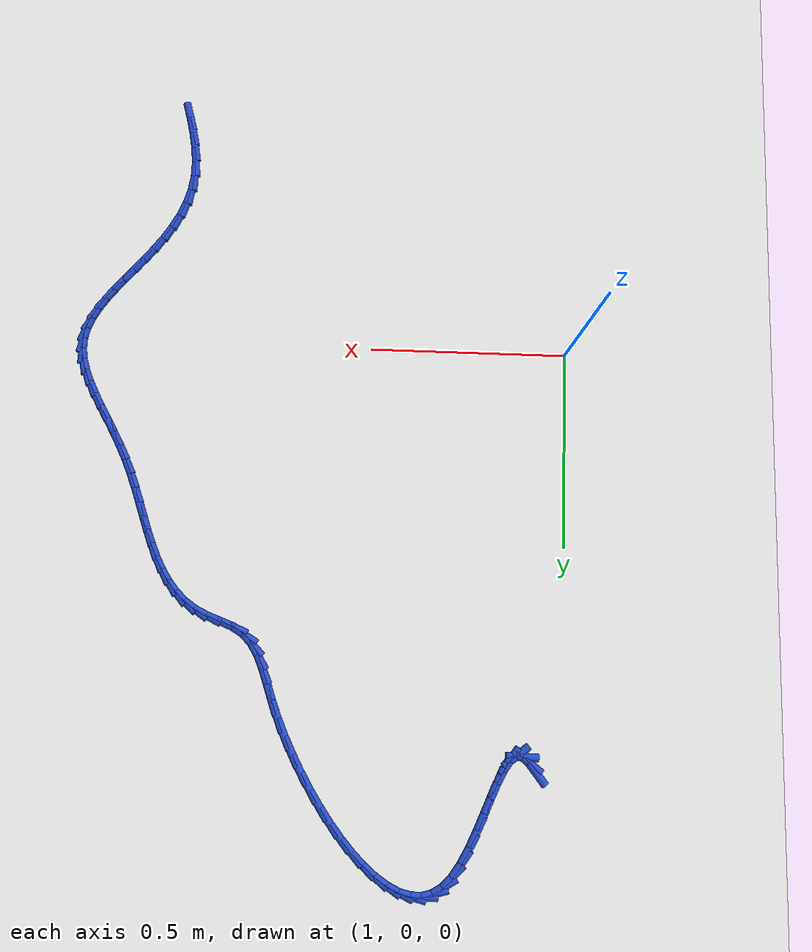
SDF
<sdf version="1.6">
 <world name="default">
  <model name="ground_plane">
   <static>1</static>
   <link name="link">
    <collision name="collision">
     <geometry><plane><normal>0 0 1</normal><size>100 100</size></plane></geometry>
     <surface><friction><ode><mu>100</mu><mu2>50</mu2></ode></friction></surface>
    </collision>
    <visual name="visual">
     <cast_shadows>0</cast_shadows>
     <geometry><plane><normal>0 0 1</normal><size>100 100</size></plane></geometry>
     <material>
      <script><uri>file://media/materials/scripts/gazebo.material</uri><name>Gazebo/WhiteGlow</name></script>
     </material>
    </visual>
   </link>
  </model>
  <model name="line">
   <link name="link_59">
    <pose>1.0690359240949716 1.0495042006117834 0.01 0 1.57 -0.9143076333291085</pose>
    <collision name="collision">
     <geometry><cylinder><radius>0.01</radius><length>0.08</length></cylinder></geometry>
    </collision>
    <visual name="visual">
     <material>
      <script><name>Gazebo/Blue</name><uri>file://media/materials/scripts/gazebo.material</uri></script>
     </material>
     <geometry><cylinder><radius>0.01</radius><length>0.08</length></cylinder></geometry>
    </visual>
   </link>
   <link name="link_60">
    <pose>1.0858885148181117 1.0276317481392983 0.01 0 1.57 -0.6633861019622189</pose>
    <collision name="collision">
     <geometry><cylinder><radius>0.01</radius><length>0.08</length></cylinder></geometry>
    </collision>
    <visual name="visual">
     <material>
      <script><name>Gazebo/Blue</name><uri>file://media/materials/scripts/gazebo.material</uri></script>
     </material>
     <geometry><cylinder><radius>0.01</radius><length>0.08</length></cylinder></geometry>
    </visual>
   </link>
   <link name="link_61">
    <pose>1.1016445791863296 1.0153176761917921 0.01 0 1.57 -0.019727249602444423</pose>
    <collision name="collision">
     <geometry><cylinder><radius>0.01</radius><length>0.08</length></cylinder></geometry>
    </collision>
    <visual name="visual">
     <material>
      <script><name>Gazebo/Blue</name><uri>file://media/materials/scripts/gazebo.material</uri></script>
     </material>
     <geometry><cylinder><radius>0.01</radius><length>0.08</length></cylinder></geometry>
    </visual>
   </link>
   <link name="link_62">
    <pose>1.1167711962874505 1.0150192309248378 0.01 0 1.57 0.6793722511070948</pose>
    <collision name="collision">
     <geometry><cylinder><radius>0.01</radius><length>0.08</length></cylinder></geometry>
    </collision>
    <visual name="visual">
     <material>
      <script><name>Gazebo/Blue</name><uri>file://media/materials/scripts/gazebo.material</uri></script>
     </material>
     <geometry><cylinder><radius>0.01</radius><length>0.08</length></cylinder></geometry>
    </visual>
   </link>
   <link name="link_63">
    <pose>1.1316212679445539 1.0270124999554586 0.01 0 1.57 0.9823801958233633</pose>
    <collision name="collision">
     <geometry><cylinder><radius>0.01</radius><length>0.08</length></cylinder></geometry>
    </collision>
    <visual name="visual">
     <material>
      <script><name>Gazebo/Blue</name><uri>file://media/materials/scripts/gazebo.material</uri></script>
     </material>
     <geometry><cylinder><radius>0.01</radius><length>0.08</length></cylinder></geometry>
    </visual>
   </link>
   <link name="link_64">
    <pose>1.1464232128322451 1.0491955363348886 0.01 0 1.57 1.109789082871601</pose>
    <collision name="collision">
     <geometry><cylinder><radius>0.01</radius><length>0.08</length></cylinder></geometry>
    </collision>
    <visual name="visual">
     <material>
      <script><name>Gazebo/Blue</name><uri>file://media/materials/scripts/gazebo.material</uri></script>
     </material>
     <geometry><cylinder><radius>0.01</radius><length>0.08</length></cylinder></geometry>
    </visual>
   </link>
   <link name="link_65">
    <pose>1.1613991570643696 1.079346184658976 0.01 0 1.57 1.1661864163518278</pose>
    <collision name="collision">
     <geometry><cylinder><radius>0.01</radius><length>0.08</length></cylinder></geometry>
    </collision>
    <visual name="visual">
     <material>
      <script><name>Gazebo/Blue</name><uri>file://media/materials/scripts/gazebo.material</uri></script>
     </material>
     <geometry><cylinder><radius>0.01</radius><length>0.08</length></cylinder></geometry>
    </visual>
   </link>
   <link name="link_66">
    <pose>1.1767712267547705 1.1152422895235679 0.01 0 1.57 1.1854322717362504</pose>
    <collision name="collision">
     <geometry><cylinder><radius>0.01</radius><length>0.08</length></cylinder></geometry>
    </collision>
    <visual name="visual">
     <material>
      <script><name>Gazebo/Blue</name><uri>file://media/materials/scripts/gazebo.material</uri></script>
     </material>
     <geometry><cylinder><radius>0.01</radius><length>0.08</length></cylinder></geometry>
    </visual>
   </link>
   <link name="link_67">
    <pose>1.1927615480172937 1.1546616955245113 0.01 0 1.57 1.178858500598776</pose>
    <collision name="collision">
     <geometry><cylinder><radius>0.01</radius><length>0.08</length></cylinder></geometry>
    </collision>
    <visual name="visual">
     <material>
      <script><name>Gazebo/Blue</name><uri>file://media/materials/scripts/gazebo.material</uri></script>
     </material>
     <geometry><cylinder><radius>0.01</radius><length>0.08</length></cylinder></geometry>
    </visual>
   </link>
   <link name="link_68">
    <pose>1.2095922469657818 1.195382247257653 0.01 0 1.57 1.1482891230084307</pose>
    <collision name="collision">
     <geometry><cylinder><radius>0.01</radius><length>0.08</length></cylinder></geometry>
    </collision>
    <visual name="visual">
     <material>
      <script><name>Gazebo/Blue</name><uri>file://media/materials/scripts/gazebo.material</uri></script>
     </material>
     <geometry><cylinder><radius>0.01</radius><length>0.08</length></cylinder></geometry>
    </visual>
   </link>
   <link name="link_69">
    <pose>1.2274854497140804 1.2351817893188413 0.01 0 1.57 1.0887782301507647</pose>
    <collision name="collision">
     <geometry><cylinder><radius>0.01</radius><length>0.08</length></cylinder></geometry>
    </collision>
    <visual name="visual">
     <material>
      <script><name>Gazebo/Blue</name><uri>file://media/materials/scripts/gazebo.material</uri></script>
     </material>
     <geometry><cylinder><radius>0.01</radius><length>0.08</length></cylinder></geometry>
    </visual>
   </link>
   <link name="link_70">
    <pose>1.246663282376033 1.2718381663039233 0.01 0 1.57 0.9867003713170029</pose>
    <collision name="collision">
     <geometry><cylinder><radius>0.01</radius><length>0.08</length></cylinder></geometry>
    </collision>
    <visual name="visual">
     <material>
      <script><name>Gazebo/Blue</name><uri>file://media/materials/scripts/gazebo.material</uri></script>
     </material>
     <geometry><cylinder><radius>0.01</radius><length>0.08</length></cylinder></geometry>
    </visual>
   </link>
   <link name="link_71">
    <pose>1.267347871065484 1.3031292228087452 0.01 0 1.57 0.8139678353129836</pose>
    <collision name="collision">
     <geometry><cylinder><radius>0.01</radius><length>0.08</length></cylinder></geometry>
    </collision>
    <visual name="visual">
     <material>
      <script><name>Gazebo/Blue</name><uri>file://media/materials/scripts/gazebo.material</uri></script>
     </material>
     <geometry><cylinder><radius>0.01</radius><length>0.08</length></cylinder></geometry>
    </visual>
   </link>
   <link name="link_72">
    <pose>1.289757133724412 1.3268569632544098 0.01 0 1.57 0.5584176943114734</pose>
    <collision name="collision">
     <geometry><cylinder><radius>0.01</radius><length>0.08</length></cylinder></geometry>
    </collision>
    <visual name="visual">
     <material>
      <script><name>Gazebo/Blue</name><uri>file://media/materials/scripts/gazebo.material</uri></script>
     </material>
     <geometry><cylinder><radius>0.01</radius><length>0.08</length></cylinder></geometry>
    </visual>
   </link>
   <link name="link_73">
    <pose>1.313913049412466 1.3419483102707752 0.01 0 1.57 0.2649962362428295</pose>
    <collision name="collision">
     <geometry><cylinder><radius>0.01</radius><length>0.08</length></cylinder></geometry>
    </collision>
    <visual name="visual">
     <material>
      <script><name>Gazebo/Blue</name><uri>file://media/materials/scripts/gazebo.material</uri></script>
     </material>
     <geometry><cylinder><radius>0.01</radius><length>0.08</length></cylinder></geometry>
    </visual>
   </link>
   <link name="link_74">
    <pose>1.3395625907868478 1.3489090446804244 0.01 0 1.57 -0.020312635874405845</pose>
    <collision name="collision">
     <geometry><cylinder><radius>0.01</radius><length>0.08</length></cylinder></geometry>
    </collision>
    <visual name="visual">
     <material>
      <script><name>Gazebo/Blue</name><uri>file://media/materials/scripts/gazebo.material</uri></script>
     </material>
     <geometry><cylinder><radius>0.01</radius><length>0.08</length></cylinder></geometry>
    </visual>
   </link>
   <link name="link_75">
    <pose>1.3664321369649444 1.3483631782953316 0.01 0 1.57 -0.2609673298879056</pose>
    <collision name="collision">
     <geometry><cylinder><radius>0.01</radius><length>0.08</length></cylinder></geometry>
    </collision>
    <visual name="visual">
     <material>
      <script><name>Gazebo/Blue</name><uri>file://media/materials/scripts/gazebo.material</uri></script>
     </material>
     <geometry><cylinder><radius>0.01</radius><length>0.08</length></cylinder></geometry>
    </visual>
   </link>
   <link name="link_76">
    <pose>1.394248067064145 1.3409347229274697 0.01 0 1.57 -0.44787537664733945</pose>
    <collision name="collision">
     <geometry><cylinder><radius>0.01</radius><length>0.08</length></cylinder></geometry>
    </collision>
    <visual name="visual">
     <material>
      <script><name>Gazebo/Blue</name><uri>file://media/materials/scripts/gazebo.material</uri></script>
     </material>
     <geometry><cylinder><radius>0.01</radius><length>0.08</length></cylinder></geometry>
    </visual>
   </link>
   <link name="link_77">
    <pose>1.4227367602018375 1.3272476903888137 0.01 0 1.57 -0.5895118840501687</pose>
    <collision name="collision">
     <geometry><cylinder><radius>0.01</radius><length>0.08</length></cylinder></geometry>
    </collision>
    <visual name="visual">
     <material>
      <script><name>Gazebo/Blue</name><uri>file://media/materials/scripts/gazebo.material</uri></script>
     </material>
     <geometry><cylinder><radius>0.01</radius><length>0.08</length></cylinder></geometry>
    </visual>
   </link>
   <link name="link_78">
    <pose>1.4516245954954103 1.307926092491336 0.01 0 1.57 -0.6978698106410746</pose>
    <collision name="collision">
     <geometry><cylinder><radius>0.01</radius><length>0.08</length></cylinder></geometry>
    </collision>
    <visual name="visual">
     <material>
      <script><name>Gazebo/Blue</name><uri>file://media/materials/scripts/gazebo.material</uri></script>
     </material>
     <geometry><cylinder><radius>0.01</radius><length>0.08</length></cylinder></geometry>
    </visual>
   </link>
   <link name="link_79">
    <pose>1.4806379520622517 1.2835939410470119 0.01 0 1.57 -0.7828529496448711</pose>
    <collision name="collision">
     <geometry><cylinder><radius>0.01</radius><length>0.08</length></cylinder></geometry>
    </collision>
    <visual name="visual">
     <material>
      <script><name>Gazebo/Blue</name><uri>file://media/materials/scripts/gazebo.material</uri></script>
     </material>
     <geometry><cylinder><radius>0.01</radius><length>0.08</length></cylinder></geometry>
    </visual>
   </link>
   <link name="link_80">
    <pose>1.5095032090197504 1.2548752478678145 0.01 0 1.57 -0.8515747197594691</pose>
    <collision name="collision">
     <geometry><cylinder><radius>0.01</radius><length>0.08</length></cylinder></geometry>
    </collision>
    <visual name="visual">
     <material>
      <script><name>Gazebo/Blue</name><uri>file://media/materials/scripts/gazebo.material</uri></script>
     </material>
     <geometry><cylinder><radius>0.01</radius><length>0.08</length></cylinder></geometry>
    </visual>
   </link>
   <link name="link_81">
    <pose>1.537946745485295 1.2223940247657177 0.01 0 1.57 -0.9089847902359813</pose>
    <collision name="collision">
     <geometry><cylinder><radius>0.01</radius><length>0.08</length></cylinder></geometry>
    </collision>
    <visual name="visual">
     <material>
      <script><name>Gazebo/Blue</name><uri>file://media/materials/scripts/gazebo.material</uri></script>
     </material>
     <geometry><cylinder><radius>0.01</radius><length>0.08</length></cylinder></geometry>
    </visual>
   </link>
   <link name="link_82">
    <pose>1.565694940576273 1.1867742835526953 0.01 0 1.57 -0.9585714182159167</pose>
    <collision name="collision">
     <geometry><cylinder><radius>0.01</radius><length>0.08</length></cylinder></geometry>
    </collision>
    <visual name="visual">
     <material>
      <script><name>Gazebo/Blue</name><uri>file://media/materials/scripts/gazebo.material</uri></script>
     </material>
     <geometry><cylinder><radius>0.01</radius><length>0.08</length></cylinder></geometry>
    </visual>
   </link>
   <link name="link_83">
    <pose>1.592474173410073 1.1486400360407212 0.01 0 1.57 -1.0028879195318579</pose>
    <collision name="collision">
     <geometry><cylinder><radius>0.01</radius><length>0.08</length></cylinder></geometry>
    </collision>
    <visual name="visual">
     <material>
      <script><name>Gazebo/Blue</name><uri>file://media/materials/scripts/gazebo.material</uri></script>
     </material>
     <geometry><cylinder><radius>0.01</radius><length>0.08</length></cylinder></geometry>
    </visual>
   </link>
   <link name="link_84">
    <pose>1.6180108231040837 1.1086152940417695 0.01 0 1.57 -1.0439171452170466</pose>
    <collision name="collision">
     <geometry><cylinder><radius>0.01</radius><length>0.08</length></cylinder></geometry>
    </collision>
    <visual name="visual">
     <material>
      <script><name>Gazebo/Blue</name><uri>file://media/materials/scripts/gazebo.material</uri></script>
     </material>
     <geometry><cylinder><radius>0.01</radius><length>0.08</length></cylinder></geometry>
    </visual>
   </link>
   <link name="link_85">
    <pose>1.6420312687756935 1.0673240693678128 0.01 0 1.57 -1.083330476829007</pose>
    <collision name="collision">
     <geometry><cylinder><radius>0.01</radius><length>0.08</length></cylinder></geometry>
    </collision>
    <visual name="visual">
     <material>
      <script><name>Gazebo/Blue</name><uri>file://media/materials/scripts/gazebo.material</uri></script>
     </material>
     <geometry><cylinder><radius>0.01</radius><length>0.08</length></cylinder></geometry>
    </visual>
   </link>
   <link name="link_86">
    <pose>1.6642618895422907 1.025390373830827 0.01 0 1.57 -1.1226925946533826</pose>
    <collision name="collision">
     <geometry><cylinder><radius>0.01</radius><length>0.08</length></cylinder></geometry>
    </collision>
    <visual name="visual">
     <material>
      <script><name>Gazebo/Blue</name><uri>file://media/materials/scripts/gazebo.material</uri></script>
     </material>
     <geometry><cylinder><radius>0.01</radius><length>0.08</length></cylinder></geometry>
    </visual>
   </link>
   <link name="link_87">
    <pose>1.6844290645212632 0.9834382192427844 0.01 0 1.57 -1.163656321785837</pose>
    <collision name="collision">
     <geometry><cylinder><radius>0.01</radius><length>0.08</length></cylinder></geometry>
    </collision>
    <visual name="visual">
     <material>
      <script><name>Gazebo/Blue</name><uri>file://media/materials/scripts/gazebo.material</uri></script>
     </material>
     <geometry><cylinder><radius>0.01</radius><length>0.08</length></cylinder></geometry>
    </visual>
   </link>
   <link name="link_88">
    <pose>1.7022591728299994 0.9420916174156594 0.01 0 1.57 -1.2080551800653327</pose>
    <collision name="collision">
     <geometry><cylinder><radius>0.01</radius><length>0.08</length></cylinder></geometry>
    </collision>
    <visual name="visual">
     <material>
      <script><name>Gazebo/Blue</name><uri>file://media/materials/scripts/gazebo.material</uri></script>
     </material>
     <geometry><cylinder><radius>0.01</radius><length>0.08</length></cylinder></geometry>
    </visual>
   </link>
   <link name="link_89">
    <pose>1.7174848307916881 0.9019750700030283 0.01 0 1.57 -1.2425263969371279</pose>
    <collision name="collision">
     <geometry><cylinder><radius>0.01</radius><length>0.08</length></cylinder></geometry>
    </collision>
    <visual name="visual">
     <material>
      <script><name>Gazebo/Blue</name><uri>file://media/materials/scripts/gazebo.material</uri></script>
     </material>
     <geometry><cylinder><radius>0.01</radius><length>0.08</length></cylinder></geometry>
    </visual>
   </link>
   <link name="link_90">
    <pose>1.7304989342250021 0.8637649339887465 0.01 0 1.57 -1.2342651035443468</pose>
    <collision name="collision">
     <geometry><cylinder><radius>0.01</radius><length>0.08</length></cylinder></geometry>
    </collision>
    <visual name="visual">
     <material>
      <script><name>Gazebo/Blue</name><uri>file://media/materials/scripts/gazebo.material</uri></script>
     </material>
     <geometry><cylinder><radius>0.01</radius><length>0.08</length></cylinder></geometry>
    </visual>
   </link>
   <link name="link_91">
    <pose>1.7429288536563616 0.8282345163515193 0.01 0 1.57 -1.1694513382597655</pose>
    <collision name="collision">
     <geometry><cylinder><radius>0.01</radius><length>0.08</length></cylinder></geometry>
    </collision>
    <visual name="visual">
     <material>
      <script><name>Gazebo/Blue</name><uri>file://media/materials/scripts/gazebo.material</uri></script>
     </material>
     <geometry><cylinder><radius>0.01</radius><length>0.08</length></cylinder></geometry>
    </visual>
   </link>
   <link name="link_92">
    <pose>1.756537330639518 0.7961677554911107 0.01 0 1.57 -1.034131165396162</pose>
    <collision name="collision">
     <geometry><cylinder><radius>0.01</radius><length>0.08</length></cylinder></geometry>
    </collision>
    <visual name="visual">
     <material>
      <script><name>Gazebo/Blue</name><uri>file://media/materials/scripts/gazebo.material</uri></script>
     </material>
     <geometry><cylinder><radius>0.01</radius><length>0.08</length></cylinder></geometry>
    </visual>
   </link>
   <link name="link_93">
    <pose>1.7730871067282234 0.7683485898072846 0.01 0 1.57 -0.8202107259165238</pose>
    <collision name="collision">
     <geometry><cylinder><radius>0.01</radius><length>0.08</length></cylinder></geometry>
    </collision>
    <visual name="visual">
     <material>
      <script><name>Gazebo/Blue</name><uri>file://media/materials/scripts/gazebo.material</uri></script>
     </material>
     <geometry><cylinder><radius>0.01</radius><length>0.08</length></cylinder></geometry>
    </visual>
   </link>
   <link name="link_94">
    <pose>1.7943409234762275 0.7455609576998048 0.01 0 1.57 -0.5563300039576063</pose>
    <collision name="collision">
     <geometry><cylinder><radius>0.01</radius><length>0.08</length></cylinder></geometry>
    </collision>
    <visual name="visual">
     <material>
      <script><name>Gazebo/Blue</name><uri>file://media/materials/scripts/gazebo.material</uri></script>
     </material>
     <geometry><cylinder><radius>0.01</radius><length>0.08</length></cylinder></geometry>
    </visual>
   </link>
   <link name="link_95">
    <pose>1.8218674859854678 0.7284436005056392 0.01 0 1.57 -0.3834772855251435</pose>
    <collision name="collision">
     <geometry><cylinder><radius>0.01</radius><length>0.08</length></cylinder></geometry>
    </collision>
    <visual name="visual">
     <material>
      <script><name>Gazebo/Blue</name><uri>file://media/materials/scripts/gazebo.material</uri></script>
     </material>
     <geometry><cylinder><radius>0.01</radius><length>0.08</length></cylinder></geometry>
    </visual>
   </link>
   <link name="link_96">
    <pose>1.8542305918253645 0.7153866936680013 0.01 0 1.57 -0.35490584790483654</pose>
    <collision name="collision">
     <geometry><cylinder><radius>0.01</radius><length>0.08</length></cylinder></geometry>
    </collision>
    <visual name="visual">
     <material>
      <script><name>Gazebo/Blue</name><uri>file://media/materials/scripts/gazebo.material</uri></script>
     </material>
     <geometry><cylinder><radius>0.01</radius><length>0.08</length></cylinder></geometry>
    </visual>
   </link>
   <link name="link_97">
    <pose>1.8876277930763177 0.7030097561805205 0.01 0 1.57 -0.4535734919568333</pose>
    <collision name="collision">
     <geometry><cylinder><radius>0.01</radius><length>0.08</length></cylinder></geometry>
    </collision>
    <visual name="visual">
     <material>
      <script><name>Gazebo/Blue</name><uri>file://media/materials/scripts/gazebo.material</uri></script>
     </material>
     <geometry><cylinder><radius>0.01</radius><length>0.08</length></cylinder></geometry>
    </visual>
   </link>
   <link name="link_98">
    <pose>1.9183586725112893 0.6880293730322006 0.01 0 1.57 -0.6125329917405486</pose>
    <collision name="collision">
     <geometry><cylinder><radius>0.01</radius><length>0.08</length></cylinder></geometry>
    </collision>
    <visual name="visual">
     <material>
      <script><name>Gazebo/Blue</name><uri>file://media/materials/scripts/gazebo.material</uri></script>
     </material>
     <geometry><cylinder><radius>0.01</radius><length>0.08</length></cylinder></geometry>
    </visual>
   </link>
   <link name="link_99">
    <pose>1.945100499712917 0.6692380011333202 0.01 0 1.57 -0.7645291500459456</pose>
    <collision name="collision">
     <geometry><cylinder><radius>0.01</radius><length>0.08</length></cylinder></geometry>
    </collision>
    <visual name="visual">
     <material>
      <script><name>Gazebo/Blue</name><uri>file://media/materials/scripts/gazebo.material</uri></script>
     </material>
     <geometry><cylinder><radius>0.01</radius><length>0.08</length></cylinder></geometry>
    </visual>
   </link>
   <link name="link_100">
    <pose>1.968307749177456 0.6469797104003443 0.01 0 1.57 -0.8985905577520304</pose>
    <collision name="collision">
     <geometry><cylinder><radius>0.01</radius><length>0.08</length></cylinder></geometry>
    </collision>
    <visual name="visual">
     <material>
      <script><name>Gazebo/Blue</name><uri>file://media/materials/scripts/gazebo.material</uri></script>
     </material>
     <geometry><cylinder><radius>0.01</radius><length>0.08</length></cylinder></geometry>
    </visual>
   </link>
   <link name="link_101">
    <pose>1.9884776443339915 0.6216358932890104 0.01 0 1.57 -1.0096425331352197</pose>
    <collision name="collision">
     <geometry><cylinder><radius>0.01</radius><length>0.08</length></cylinder></geometry>
    </collision>
    <visual name="visual">
     <material>
      <script><name>Gazebo/Blue</name><uri>file://media/materials/scripts/gazebo.material</uri></script>
     </material>
     <geometry><cylinder><radius>0.01</radius><length>0.08</length></cylinder></geometry>
    </visual>
   </link>
   <link name="link_102">
    <pose>2.006107408611611 0.5935879422550546 0.01 0 1.57 -1.0966284763951721</pose>
    <collision name="collision">
     <geometry><cylinder><radius>0.01</radius><length>0.08</length></cylinder></geometry>
    </collision>
    <visual name="visual">
     <material>
      <script><name>Gazebo/Blue</name><uri>file://media/materials/scripts/gazebo.material</uri></script>
     </material>
     <geometry><cylinder><radius>0.01</radius><length>0.08</length></cylinder></geometry>
    </visual>
   </link>
   <link name="link_103">
    <pose>2.0216942654393995 0.563217249754214 0.01 0 1.57 -1.1608652773094261</pose>
    <collision name="collision">
     <geometry><cylinder><radius>0.01</radius><length>0.08</length></cylinder></geometry>
    </collision>
    <visual name="visual">
     <material>
      <script><name>Gazebo/Blue</name><uri>file://media/materials/scripts/gazebo.material</uri></script>
     </material>
     <geometry><cylinder><radius>0.01</radius><length>0.08</length></cylinder></geometry>
    </visual>
   </link>
   <link name="link_104">
    <pose>2.035735438246444 0.5309052082422248 0.01 0 1.57 -1.2045224174410007</pose>
    <collision name="collision">
     <geometry><cylinder><radius>0.01</radius><length>0.08</length></cylinder></geometry>
    </collision>
    <visual name="visual">
     <material>
      <script><name>Gazebo/Blue</name><uri>file://media/materials/scripts/gazebo.material</uri></script>
     </material>
     <geometry><cylinder><radius>0.01</radius><length>0.08</length></cylinder></geometry>
    </visual>
   </link>
   <link name="link_105">
    <pose>2.0487281504618307 0.49703321017482466 0.01 0 1.57 -1.229711487819992</pose>
    <collision name="collision">
     <geometry><cylinder><radius>0.01</radius><length>0.08</length></cylinder></geometry>
    </collision>
    <visual name="visual">
     <material>
      <script><name>Gazebo/Blue</name><uri>file://media/materials/scripts/gazebo.material</uri></script>
     </material>
     <geometry><cylinder><radius>0.01</radius><length>0.08</length></cylinder></geometry>
    </visual>
   </link>
   <link name="link_106">
    <pose>2.0611696255146454 0.4619826480077496 0.01 0 1.57 -1.2380844597157141</pose>
    <collision name="collision">
     <geometry><cylinder><radius>0.01</radius><length>0.08</length></cylinder></geometry>
    </collision>
    <visual name="visual">
     <material>
      <script><name>Gazebo/Blue</name><uri>file://media/materials/scripts/gazebo.material</uri></script>
     </material>
     <geometry><cylinder><radius>0.01</radius><length>0.08</length></cylinder></geometry>
    </visual>
   </link>
   <link name="link_107">
    <pose>2.0735570868339757 0.4261349141967367 0.01 0 1.57 -1.2307245380127645</pose>
    <collision name="collision">
     <geometry><cylinder><radius>0.01</radius><length>0.08</length></cylinder></geometry>
    </collision>
    <visual name="visual">
     <material>
      <script><name>Gazebo/Blue</name><uri>file://media/materials/scripts/gazebo.material</uri></script>
     </material>
     <geometry><cylinder><radius>0.01</radius><length>0.08</length></cylinder></geometry>
    </visual>
   </link>
   <link name="link_108">
    <pose>2.086387757848906 0.3898714011975219 0.01 0 1.57 -1.20818139648252</pose>
    <collision name="collision">
     <geometry><cylinder><radius>0.01</radius><length>0.08</length></cylinder></geometry>
    </collision>
    <visual name="visual">
     <material>
      <script><name>Gazebo/Blue</name><uri>file://media/materials/scripts/gazebo.material</uri></script>
     </material>
     <geometry><cylinder><radius>0.01</radius><length>0.08</length></cylinder></geometry>
    </visual>
   </link>
   <link name="link_109">
    <pose>2.1001588619885236 0.35357350146584304 0.01 0 1.57 -1.1705847582308169</pose>
    <collision name="collision">
     <geometry><cylinder><radius>0.01</radius><length>0.08</length></cylinder></geometry>
    </collision>
    <visual name="visual">
     <material>
      <script><name>Gazebo/Blue</name><uri>file://media/materials/scripts/gazebo.material</uri></script>
     </material>
     <geometry><cylinder><radius>0.01</radius><length>0.08</length></cylinder></geometry>
    </visual>
   </link>
   <link name="link_110">
    <pose>2.1153676226819145 0.3176226074574364 0.01 0 1.57 -1.1207880133244683</pose>
    <collision name="collision">
     <geometry><cylinder><radius>0.01</radius><length>0.08</length></cylinder></geometry>
    </collision>
    <visual name="visual">
     <material>
      <script><name>Gazebo/Blue</name><uri>file://media/materials/scripts/gazebo.material</uri></script>
     </material>
     <geometry><cylinder><radius>0.01</radius><length>0.08</length></cylinder></geometry>
    </visual>
   </link>
   <link name="link_111">
    <pose>2.1323982342897607 0.28236730980391944 0.01 0 1.57 -1.080467982554079</pose>
    <collision name="collision">
     <geometry><cylinder><radius>0.01</radius><length>0.08</length></cylinder></geometry>
    </collision>
    <visual name="visual">
     <material>
      <script><name>Gazebo/Blue</name><uri>file://media/materials/scripts/gazebo.material</uri></script>
     </material>
     <geometry><cylinder><radius>0.01</radius><length>0.08</length></cylinder></geometry>
    </visual>
   </link>
   <link name="link_112">
    <pose>2.1507911717015795 0.24791134586076 0.01 0 1.57 -1.0588919109657</pose>
    <collision name="collision">
     <geometry><cylinder><radius>0.01</radius><length>0.08</length></cylinder></geometry>
    </collision>
    <visual name="visual">
     <material>
      <script><name>Gazebo/Blue</name><uri>file://media/materials/scripts/gazebo.material</uri></script>
     </material>
     <geometry><cylinder><radius>0.01</radius><length>0.08</length></cylinder></geometry>
    </visual>
   </link>
   <link name="link_113">
    <pose>2.1697054544006145 0.21424775196356993 0.01 0 1.57 -1.0561342157830178</pose>
    <collision name="collision">
     <geometry><cylinder><radius>0.01</radius><length>0.08</length></cylinder></geometry>
    </collision>
    <visual name="visual">
     <material>
      <script><name>Gazebo/Blue</name><uri>file://media/materials/scripts/gazebo.material</uri></script>
     </material>
     <geometry><cylinder><radius>0.01</radius><length>0.08</length></cylinder></geometry>
    </visual>
   </link>
   <link name="link_114">
    <pose>2.188298230737528 0.1813690214322319 0.01 0 1.57 -1.073406494968452</pose>
    <collision name="collision">
     <geometry><cylinder><radius>0.01</radius><length>0.08</length></cylinder></geometry>
    </collision>
    <visual name="visual">
     <material>
      <script><name>Gazebo/Blue</name><uri>file://media/materials/scripts/gazebo.material</uri></script>
     </material>
     <geometry><cylinder><radius>0.01</radius><length>0.08</length></cylinder></geometry>
    </visual>
   </link>
   <link name="link_115">
    <pose>2.2057266490629814 0.14926764758662872 0.01 0 1.57 -1.1134124659160256</pose>
    <collision name="collision">
     <geometry><cylinder><radius>0.01</radius><length>0.08</length></cylinder></geometry>
    </collision>
    <visual name="visual">
     <material>
      <script><name>Gazebo/Blue</name><uri>file://media/materials/scripts/gazebo.material</uri></script>
     </material>
     <geometry><cylinder><radius>0.01</radius><length>0.08</length></cylinder></geometry>
    </visual>
   </link>
   <link name="link_116">
    <pose>2.221147857727638 0.11793612374664443 0.01 0 1.57 -1.1806414309766466</pose>
    <collision name="collision">
     <geometry><cylinder><radius>0.01</radius><length>0.08</length></cylinder></geometry>
    </collision>
    <visual name="visual">
     <material>
      <script><name>Gazebo/Blue</name><uri>file://media/materials/scripts/gazebo.material</uri></script>
     </material>
     <geometry><cylinder><radius>0.01</radius><length>0.08</length></cylinder></geometry>
    </visual>
   </link>
   <link name="link_117">
    <pose>2.2337190050821585 0.0873669432321618 0.01 0 1.57 -1.2813738032862658</pose>
    <collision name="collision">
     <geometry><cylinder><radius>0.01</radius><length>0.08</length></cylinder></geometry>
    </collision>
    <visual name="visual">
     <material>
      <script><name>Gazebo/Blue</name><uri>file://media/materials/scripts/gazebo.material</uri></script>
     </material>
     <geometry><cylinder><radius>0.01</radius><length>0.08</length></cylinder></geometry>
    </visual>
   </link>
   <link name="link_118">
    <pose>2.242597239477205 0.057552599363064075 0.01 0 1.57 -1.4224980095064546</pose>
    <collision name="collision">
     <geometry><cylinder><radius>0.01</radius><length>0.08</length></cylinder></geometry>
    </collision>
    <visual name="visual">
     <material>
      <script><name>Gazebo/Blue</name><uri>file://media/materials/scripts/gazebo.material</uri></script>
     </material>
     <geometry><cylinder><radius>0.01</radius><length>0.08</length></cylinder></geometry>
    </visual>
   </link>
   <link name="link_119">
    <pose>2.246939709263441 0.028485585459233985 0.01 0 1.57 1.5352500189471125</pose>
    <collision name="collision">
     <geometry><cylinder><radius>0.01</radius><length>0.08</length></cylinder></geometry>
    </collision>
    <visual name="visual">
     <material>
      <script><name>Gazebo/Blue</name><uri>file://media/materials/scripts/gazebo.material</uri></script>
     </material>
     <geometry><cylinder><radius>0.01</radius><length>0.08</length></cylinder></geometry>
    </visual>
   </link>
   <link name="link_120">
    <pose>2.245932238544953 0.000155038147965942 0.01 0 1.57 1.3423345025837754</pose>
    <collision name="collision">
     <geometry><cylinder><radius>0.01</radius><length>0.08</length></cylinder></geometry>
    </collision>
    <visual name="visual">
     <material>
      <script><name>Gazebo/Blue</name><uri>file://media/materials/scripts/gazebo.material</uri></script>
     </material>
     <geometry><cylinder><radius>0.01</radius><length>0.08</length></cylinder></geometry>
    </visual>
   </link>
   <link name="link_121">
    <pose>2.239493548975339 -0.027535696602087597 0.01 0 1.57 1.181469526838508</pose>
    <collision name="collision">
     <geometry><cylinder><radius>0.01</radius><length>0.08</length></cylinder></geometry>
    </collision>
    <visual name="visual">
     <material>
      <script><name>Gazebo/Blue</name><uri>file://media/materials/scripts/gazebo.material</uri></script>
     </material>
     <geometry><cylinder><radius>0.01</radius><length>0.08</length></cylinder></geometry>
    </visual>
   </link>
   <link name="link_122">
    <pose>2.2283184889162753 -0.05477412374887213 0.01 0 1.57 1.058290584432905</pose>
    <collision name="collision">
     <geometry><cylinder><radius>0.01</radius><length>0.08</length></cylinder></geometry>
    </collision>
    <visual name="visual">
     <material>
      <script><name>Gazebo/Blue</name><uri>file://media/materials/scripts/gazebo.material</uri></script>
     </material>
     <geometry><cylinder><radius>0.01</radius><length>0.08</length></cylinder></geometry>
    </visual>
   </link>
   <link name="link_123">
    <pose>2.2131392372173266 -0.08175211803864191 0.01 0 1.57 0.9697458351613063</pose>
    <collision name="collision">
     <geometry><cylinder><radius>0.01</radius><length>0.08</length></cylinder></geometry>
    </collision>
    <visual name="visual">
     <material>
      <script><name>Gazebo/Blue</name><uri>file://media/materials/scripts/gazebo.material</uri></script>
     </material>
     <geometry><cylinder><radius>0.01</radius><length>0.08</length></cylinder></geometry>
    </visual>
   </link>
   <link name="link_124">
    <pose>2.194687972728057 -0.10866155421765104 0.01 0 1.57 0.9105459770833956</pose>
    <collision name="collision">
     <geometry><cylinder><radius>0.01</radius><length>0.08</length></cylinder></geometry>
    </collision>
    <visual name="visual">
     <material>
      <script><name>Gazebo/Blue</name><uri>file://media/materials/scripts/gazebo.material</uri></script>
     </material>
     <geometry><cylinder><radius>0.01</radius><length>0.08</length></cylinder></geometry>
    </visual>
   </link>
   <link name="link_125">
    <pose>2.17369687429803 -0.13569430703215452 0.01 0 1.57 0.875868177635806</pose>
    <collision name="collision">
     <geometry><cylinder><radius>0.01</radius><length>0.08</length></cylinder></geometry>
    </collision>
    <visual name="visual">
     <material>
      <script><name>Gazebo/Blue</name><uri>file://media/materials/scripts/gazebo.material</uri></script>
     </material>
     <geometry><cylinder><radius>0.01</radius><length>0.08</length></cylinder></geometry>
    </visual>
   </link>
   <link name="link_126">
    <pose>2.150898120776811 -0.163042251228405 0.01 0 1.57 0.8622009614219303</pose>
    <collision name="collision">
     <geometry><cylinder><radius>0.01</radius><length>0.08</length></cylinder></geometry>
    </collision>
    <visual name="visual">
     <material>
      <script><name>Gazebo/Blue</name><uri>file://media/materials/scripts/gazebo.material</uri></script>
     </material>
     <geometry><cylinder><radius>0.01</radius><length>0.08</length></cylinder></geometry>
    </visual>
   </link>
   <link name="link_127">
    <pose>2.1270238910139634 -0.19089726155265735 0.01 0 1.57 0.8673875818807163</pose>
    <collision name="collision">
     <geometry><cylinder><radius>0.01</radius><length>0.08</length></cylinder></geometry>
    </collision>
    <visual name="visual">
     <material>
      <script><name>Gazebo/Blue</name><uri>file://media/materials/scripts/gazebo.material</uri></script>
     </material>
     <geometry><cylinder><radius>0.01</radius><length>0.08</length></cylinder></geometry>
    </visual>
   </link>
   <link name="link_128">
    <pose>2.1028063638590524 -0.2194512127511659 0.01 0 1.57 0.8904309278621332</pose>
    <collision name="collision">
     <geometry><cylinder><radius>0.01</radius><length>0.08</length></cylinder></geometry>
    </collision>
    <visual name="visual">
     <material>
      <script><name>Gazebo/Blue</name><uri>file://media/materials/scripts/gazebo.material</uri></script>
     </material>
     <geometry><cylinder><radius>0.01</radius><length>0.08</length></cylinder></geometry>
    </visual>
   </link>
   <link name="link_129">
    <pose>2.078977718161642 -0.24889597957018475 0.01 0 1.57 0.9312484107671587</pose>
    <collision name="collision">
     <geometry><cylinder><radius>0.01</radius><length>0.08</length></cylinder></geometry>
    </collision>
    <visual name="visual">
     <material>
      <script><name>Gazebo/Blue</name><uri>file://media/materials/scripts/gazebo.material</uri></script>
     </material>
     <geometry><cylinder><radius>0.01</radius><length>0.08</length></cylinder></geometry>
    </visual>
   </link>
   <link name="link_130">
    <pose>2.0562701327712958 -0.2794234367559681 0.01 0 1.57 0.9903858008627227</pose>
    <collision name="collision">
     <geometry><cylinder><radius>0.01</radius><length>0.08</length></cylinder></geometry>
    </collision>
    <visual name="visual">
     <material>
      <script><name>Gazebo/Blue</name><uri>file://media/materials/scripts/gazebo.material</uri></script>
     </material>
     <geometry><cylinder><radius>0.01</radius><length>0.08</length></cylinder></geometry>
    </visual>
   </link>
   <link name="link_131">
    <pose>2.0354157865375786 -0.31122545905477006 0.01 0 1.57 1.0686162820886411</pose>
    <collision name="collision">
     <geometry><cylinder><radius>0.01</radius><length>0.08</length></cylinder></geometry>
    </collision>
    <visual name="visual">
     <material>
      <script><name>Gazebo/Blue</name><uri>file://media/materials/scripts/gazebo.material</uri></script>
     </material>
     <geometry><cylinder><radius>0.01</radius><length>0.08</length></cylinder></geometry>
    </visual>
   </link>
   <link name="link_132">
    <pose>2.017146858310054 -0.34449392121284583 0.01 0 1.57 1.1663227684862825</pose>
    <collision name="collision">
     <geometry><cylinder><radius>0.01</radius><length>0.08</length></cylinder></geometry>
    </collision>
    <visual name="visual">
     <material>
      <script><name>Gazebo/Blue</name><uri>file://media/materials/scripts/gazebo.material</uri></script>
     </material>
     <geometry><cylinder><radius>0.01</radius><length>0.08</length></cylinder></geometry>
    </visual>
   </link>
   <link name="link_133">
    <pose>2.002195526938288 -0.37942069797644773 0.01 0 1.57 1.282623979931887</pose>
    <collision name="collision">
     <geometry><cylinder><radius>0.01</radius><length>0.08</length></cylinder></geometry>
    </collision>
    <visual name="visual">
     <material>
      <script><name>Gazebo/Blue</name><uri>file://media/materials/scripts/gazebo.material</uri></script>
     </material>
     <geometry><cylinder><radius>0.01</radius><length>0.08</length></cylinder></geometry>
    </visual>
   </link>
   <link name="link_134">
    <pose>1.991293971271844 -0.4161976640918309 0.01 0 1.57 1.4144387473903521</pose>
    <collision name="collision">
     <geometry><cylinder><radius>0.01</radius><length>0.08</length></cylinder></geometry>
    </collision>
    <visual name="visual">
     <material>
      <script><name>Gazebo/Blue</name><uri>file://media/materials/scripts/gazebo.material</uri></script>
     </material>
     <geometry><cylinder><radius>0.01</radius><length>0.08</length></cylinder></geometry>
    </visual>
   </link>
   <link name="link_135">
    <pose>1.9851743701602849 -0.4550166943052494 0.01 0 1.57 1.5515634139474614</pose>
    <collision name="collision">
     <geometry><cylinder><radius>0.01</radius><length>0.08</length></cylinder></geometry>
    </collision>
    <visual name="visual">
     <material>
      <script><name>Gazebo/Blue</name><uri>file://media/materials/scripts/gazebo.material</uri></script>
     </material>
     <geometry><cylinder><radius>0.01</radius><length>0.08</length></cylinder></geometry>
    </visual>
   </link>
   <link name="link_136">
    <pose>1.9843865552558209 -0.49597345262069065 0.01 0 1.57 -1.4782346197587506</pose>
    <collision name="collision">
     <geometry><cylinder><radius>0.01</radius><length>0.08</length></cylinder></geometry>
    </collision>
    <visual name="visual">
     <material>
      <script><name>Gazebo/Blue</name><uri>file://media/materials/scripts/gazebo.material</uri></script>
     </material>
     <geometry><cylinder><radius>0.01</radius><length>0.08</length></cylinder></geometry>
    </visual>
   </link>
   <link name="link_137">
    <pose>1.988339909112158 -0.5385618748232524 0.01 0 1.57 -1.3963332932273713</pose>
    <collision name="collision">
     <geometry><cylinder><radius>0.01</radius><length>0.08</length></cylinder></geometry>
    </collision>
    <visual name="visual">
     <material>
      <script><name>Gazebo/Blue</name><uri>file://media/materials/scripts/gazebo.material</uri></script>
     </material>
     <geometry><cylinder><radius>0.01</radius><length>0.08</length></cylinder></geometry>
    </visual>
   </link>
   <link name="link_138">
    <pose>1.9960038007748755 -0.5820437350479595 0.01 0 1.57 -1.3380683402665408</pose>
    <collision name="collision">
     <geometry><cylinder><radius>0.01</radius><length>0.08</length></cylinder></geometry>
    </collision>
    <visual name="visual">
     <material>
      <script><name>Gazebo/Blue</name><uri>file://media/materials/scripts/gazebo.material</uri></script>
     </material>
     <geometry><cylinder><radius>0.01</radius><length>0.08</length></cylinder></geometry>
    </visual>
   </link>
   <link name="link_139">
    <pose>2.0063466626174193 -0.6256803132192179 0.01 0 1.57 -1.299176485220535</pose>
    <collision name="collision">
     <geometry><cylinder><radius>0.01</radius><length>0.08</length></cylinder></geometry>
    </collision>
    <visual name="visual">
     <material>
      <script><name>Gazebo/Blue</name><uri>file://media/materials/scripts/gazebo.material</uri></script>
     </material>
     <geometry><cylinder><radius>0.01</radius><length>0.08</length></cylinder></geometry>
    </visual>
   </link>
  </model>
 </world>
</sdf>
